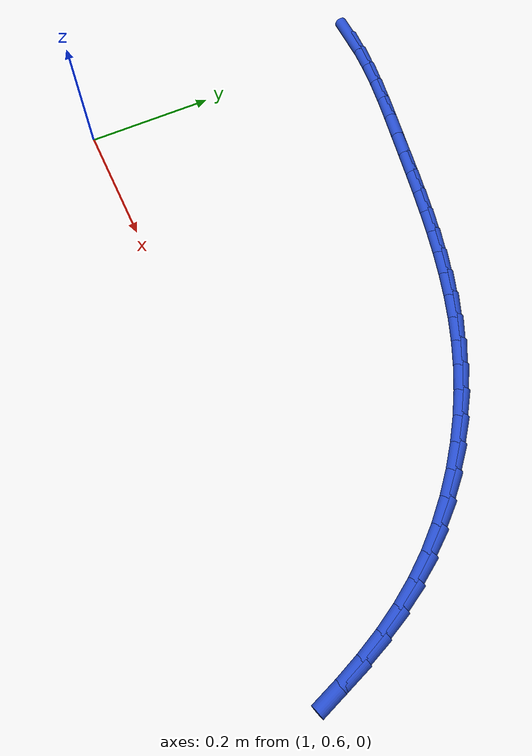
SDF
<sdf version="1.6">
 <world name="default">
  <model name="ground_plane">
   <static>1</static>
   <link name="link">
    <collision name="collision">
     <geometry><plane><normal>0 0 1</normal><size>100 100</size></plane></geometry>
     <surface><friction><ode><mu>100</mu><mu2>50</mu2></ode></friction></surface>
    </collision>
    <visual name="visual">
     <cast_shadows>0</cast_shadows>
     <geometry><plane><normal>0 0 1</normal><size>100 100</size></plane></geometry>
     <material>
      <script><uri>file://media/materials/scripts/gazebo.material</uri><name>Gazebo/WhiteGlow</name></script>
     </material>
    </visual>
   </link>
  </model>
  <model name="line">
   <link name="link_42">
    <pose>0.9817953821972434 1.0853295644105112 0.01 0 1.57 -0.028064290250514535</pose>
    <collision name="collision">
     <geometry><cylinder><radius>0.01</radius><length>0.08</length></cylinder></geometry>
    </collision>
    <visual name="visual">
     <material>
      <script><name>Gazebo/Blue</name><uri>file://media/materials/scripts/gazebo.material</uri></script>
     </material>
     <geometry><cylinder><radius>0.01</radius><length>0.08</length></cylinder></geometry>
    </visual>
   </link>
   <link name="link_43">
    <pose>1.019267383030441 1.084277663127671 0.01 0 1.57 -0.09340894597363829</pose>
    <collision name="collision">
     <geometry><cylinder><radius>0.01</radius><length>0.08</length></cylinder></geometry>
    </collision>
    <visual name="visual">
     <material>
      <script><name>Gazebo/Blue</name><uri>file://media/materials/scripts/gazebo.material</uri></script>
     </material>
     <geometry><cylinder><radius>0.01</radius><length>0.08</length></cylinder></geometry>
    </visual>
   </link>
   <link name="link_44">
    <pose>1.0574258064903836 1.0807029221457571 0.01 0 1.57 -0.14314682011853433</pose>
    <collision name="collision">
     <geometry><cylinder><radius>0.01</radius><length>0.08</length></cylinder></geometry>
    </collision>
    <visual name="visual">
     <material>
      <script><name>Gazebo/Blue</name><uri>file://media/materials/scripts/gazebo.material</uri></script>
     </material>
     <geometry><cylinder><radius>0.01</radius><length>0.08</length></cylinder></geometry>
    </visual>
   </link>
   <link name="link_45">
    <pose>1.0960547964541636 1.0751352237575615 0.01 0 1.57 -0.17888267754836734</pose>
    <collision name="collision">
     <geometry><cylinder><radius>0.01</radius><length>0.08</length></cylinder></geometry>
    </collision>
    <visual name="visual">
     <material>
      <script><name>Gazebo/Blue</name><uri>file://media/materials/scripts/gazebo.material</uri></script>
     </material>
     <geometry><cylinder><radius>0.01</radius><length>0.08</length></cylinder></geometry>
    </visual>
   </link>
   <link name="link_46">
    <pose>1.1349384967988727 1.0681044502558752 0.01 0 1.57 -0.20182484992709407</pose>
    <collision name="collision">
     <geometry><cylinder><radius>0.01</radius><length>0.08</length></cylinder></geometry>
    </collision>
    <visual name="visual">
     <material>
      <script><name>Gazebo/Blue</name><uri>file://media/materials/scripts/gazebo.material</uri></script>
     </material>
     <geometry><cylinder><radius>0.01</radius><length>0.08</length></cylinder></geometry>
    </visual>
   </link>
   <link name="link_47">
    <pose>1.1738610514016017 1.0601404839334896 0.01 0 1.57 -0.21268831791208223</pose>
    <collision name="collision">
     <geometry><cylinder><radius>0.01</radius><length>0.08</length></cylinder></geometry>
    </collision>
    <visual name="visual">
     <material>
      <script><name>Gazebo/Blue</name><uri>file://media/materials/scripts/gazebo.material</uri></script>
     </material>
     <geometry><cylinder><radius>0.01</radius><length>0.08</length></cylinder></geometry>
    </visual>
   </link>
   <link name="link_48">
    <pose>1.2126066041394439 1.0517732070831967 0.01 0 1.57 -0.21323765566338074</pose>
    <collision name="collision">
     <geometry><cylinder><radius>0.01</radius><length>0.08</length></cylinder></geometry>
    </collision>
    <visual name="visual">
     <material>
      <script><name>Gazebo/Blue</name><uri>file://media/materials/scripts/gazebo.material</uri></script>
     </material>
     <geometry><cylinder><radius>0.01</radius><length>0.08</length></cylinder></geometry>
    </visual>
   </link>
   <link name="link_49">
    <pose>1.2509776631504053 1.0434647395188101 0.01 0 1.57 -0.21430568211302622</pose>
    <collision name="collision">
     <geometry><cylinder><radius>0.01</radius><length>0.08</length></cylinder></geometry>
    </collision>
    <visual name="visual">
     <material>
      <script><name>Gazebo/Blue</name><uri>file://media/materials/scripts/gazebo.material</uri></script>
     </material>
     <geometry><cylinder><radius>0.01</radius><length>0.08</length></cylinder></geometry>
    </visual>
   </link>
   <link name="link_50">
    <pose>1.2889032679867423 1.0352103114614886 0.01 0 1.57 -0.22062290532530543</pose>
    <collision name="collision">
     <geometry><cylinder><radius>0.01</radius><length>0.08</length></cylinder></geometry>
    </collision>
    <visual name="visual">
     <material>
      <script><name>Gazebo/Blue</name><uri>file://media/materials/scripts/gazebo.material</uri></script>
     </material>
     <geometry><cylinder><radius>0.01</radius><length>0.08</length></cylinder></geometry>
    </visual>
   </link>
   <link name="link_51">
    <pose>1.3263657627437275 1.0268084641399922 0.01 0 1.57 -0.23236589635160992</pose>
    <collision name="collision">
     <geometry><cylinder><radius>0.01</radius><length>0.08</length></cylinder></geometry>
    </collision>
    <visual name="visual">
     <material>
      <script><name>Gazebo/Blue</name><uri>file://media/materials/scripts/gazebo.material</uri></script>
     </material>
     <geometry><cylinder><radius>0.01</radius><length>0.08</length></cylinder></geometry>
    </visual>
   </link>
   <link name="link_52">
    <pose>1.363347677998478 1.0180570506817679 0.01 0 1.57 -0.24967230393669435</pose>
    <collision name="collision">
     <geometry><cylinder><radius>0.01</radius><length>0.08</length></cylinder></geometry>
    </collision>
    <visual name="visual">
     <material>
      <script><name>Gazebo/Blue</name><uri>file://media/materials/scripts/gazebo.material</uri></script>
     </material>
     <geometry><cylinder><radius>0.01</radius><length>0.08</length></cylinder></geometry>
    </visual>
   </link>
   <link name="link_53">
    <pose>1.399831544328109 1.0087539242142645 0.01 0 1.57 -0.27264383680383425</pose>
    <collision name="collision">
     <geometry><cylinder><radius>0.01</radius><length>0.08</length></cylinder></geometry>
    </collision>
    <visual name="visual">
     <material>
      <script><name>Gazebo/Blue</name><uri>file://media/materials/scripts/gazebo.material</uri></script>
     </material>
     <geometry><cylinder><radius>0.01</radius><length>0.08</length></cylinder></geometry>
    </visual>
   </link>
   <link name="link_54">
    <pose>1.4357998923097375 0.9986969378649291 0.01 0 1.57 -0.30132721122784484</pose>
    <collision name="collision">
     <geometry><cylinder><radius>0.01</radius><length>0.08</length></cylinder></geometry>
    </collision>
    <visual name="visual">
     <material>
      <script><name>Gazebo/Blue</name><uri>file://media/materials/scripts/gazebo.material</uri></script>
     </material>
     <geometry><cylinder><radius>0.01</radius><length>0.08</length></cylinder></geometry>
    </visual>
   </link>
   <link name="link_55">
    <pose>1.4712352525204806 0.98768394476121 0.01 0 1.57 -0.3356895209946991</pose>
    <collision name="collision">
     <geometry><cylinder><radius>0.01</radius><length>0.08</length></cylinder></geometry>
    </collision>
    <visual name="visual">
     <material>
      <script><name>Gazebo/Blue</name><uri>file://media/materials/scripts/gazebo.material</uri></script>
     </material>
     <geometry><cylinder><radius>0.01</radius><length>0.08</length></cylinder></geometry>
    </visual>
   </link>
   <link name="link_56">
    <pose>1.5061201555374533 0.9755127980305555 0.01 0 1.57 -0.37558959024129496</pose>
    <collision name="collision">
     <geometry><cylinder><radius>0.01</radius><length>0.08</length></cylinder></geometry>
    </collision>
    <visual name="visual">
     <material>
      <script><name>Gazebo/Blue</name><uri>file://media/materials/scripts/gazebo.material</uri></script>
     </material>
     <geometry><cylinder><radius>0.01</radius><length>0.08</length></cylinder></geometry>
    </visual>
   </link>
   <link name="link_57">
    <pose>1.5404371319377734 0.9619813508004131 0.01 0 1.57 -0.4207485864366747</pose>
    <collision name="collision">
     <geometry><cylinder><radius>0.01</radius><length>0.08</length></cylinder></geometry>
    </collision>
    <visual name="visual">
     <material>
      <script><name>Gazebo/Blue</name><uri>file://media/materials/scripts/gazebo.material</uri></script>
     </material>
     <geometry><cylinder><radius>0.01</radius><length>0.08</length></cylinder></geometry>
    </visual>
   </link>
   <link name="link_58">
    <pose>1.5741687122985564 0.9468874561982309 0.01 0 1.57 -0.4707251097073771</pose>
    <collision name="collision">
     <geometry><cylinder><radius>0.01</radius><length>0.08</length></cylinder></geometry>
    </collision>
    <visual name="visual">
     <material>
      <script><name>Gazebo/Blue</name><uri>file://media/materials/scripts/gazebo.material</uri></script>
     </material>
     <geometry><cylinder><radius>0.01</radius><length>0.08</length></cylinder></geometry>
    </visual>
   </link>
   <link name="link_59">
    <pose>1.6072974271969185 0.9300289673514566 0.01 0 1.57 -0.5246531406020764</pose>
    <collision name="collision">
     <geometry><cylinder><radius>0.01</radius><length>0.08</length></cylinder></geometry>
    </collision>
    <visual name="visual">
     <material>
      <script><name>Gazebo/Blue</name><uri>file://media/materials/scripts/gazebo.material</uri></script>
     </material>
     <geometry><cylinder><radius>0.01</radius><length>0.08</length></cylinder></geometry>
    </visual>
   </link>
   <link name="link_60">
    <pose>1.6397892204547773 0.911224116315038 0.01 0 1.57 -0.5800681598573565</pose>
    <collision name="collision">
     <geometry><cylinder><radius>0.01</radius><length>0.08</length></cylinder></geometry>
    </collision>
    <visual name="visual">
     <material>
      <script><name>Gazebo/Blue</name><uri>file://media/materials/scripts/gazebo.material</uri></script>
     </material>
     <geometry><cylinder><radius>0.01</radius><length>0.08</length></cylinder></geometry>
    </visual>
   </link>
   <link name="link_61">
    <pose>1.6714672168022822 0.890466606469191 0.01 0 1.57 -0.6364839782524052</pose>
    <collision name="collision">
     <geometry><cylinder><radius>0.01</radius><length>0.08</length></cylinder></geometry>
    </collision>
    <visual name="visual">
     <material>
      <script><name>Gazebo/Blue</name><uri>file://media/materials/scripts/gazebo.material</uri></script>
     </material>
     <geometry><cylinder><radius>0.01</radius><length>0.08</length></cylinder></geometry>
    </visual>
   </link>
   <link name="link_62">
    <pose>1.7020816550074782 0.8678396908209035 0.01 0 1.57 -0.6946423712176923</pose>
    <collision name="collision">
     <geometry><cylinder><radius>0.01</radius><length>0.08</length></cylinder></geometry>
    </collision>
    <visual name="visual">
     <material>
      <script><name>Gazebo/Blue</name><uri>file://media/materials/scripts/gazebo.material</uri></script>
     </material>
     <geometry><cylinder><radius>0.01</radius><length>0.08</length></cylinder></geometry>
    </visual>
   </link>
   <link name="link_63">
    <pose>1.7313821906249578 0.843427338928685 0.01 0 1.57 -0.7552779015953359</pose>
    <collision name="collision">
     <geometry><cylinder><radius>0.01</radius><length>0.08</length></cylinder></geometry>
    </collision>
    <visual name="visual">
     <material>
      <script><name>Gazebo/Blue</name><uri>file://media/materials/scripts/gazebo.material</uri></script>
     </material>
     <geometry><cylinder><radius>0.01</radius><length>0.08</length></cylinder></geometry>
    </visual>
   </link>
   <link name="link_64">
    <pose>1.7591184792093133 0.817313520351046 0.01 0 1.57 -0.8191135648344122</pose>
    <collision name="collision">
     <geometry><cylinder><radius>0.01</radius><length>0.08</length></cylinder></geometry>
    </collision>
    <visual name="visual">
     <material>
      <script><name>Gazebo/Blue</name><uri>file://media/materials/scripts/gazebo.material</uri></script>
     </material>
     <geometry><cylinder><radius>0.01</radius><length>0.08</length></cylinder></geometry>
    </visual>
   </link>
   <link name="link_65">
    <pose>1.7850401763151373 0.7895822046464955 0.01 0 1.57 -0.8868543155305477</pose>
    <collision name="collision">
     <geometry><cylinder><radius>0.01</radius><length>0.08</length></cylinder></geometry>
    </collision>
    <visual name="visual">
     <material>
      <script><name>Gazebo/Blue</name><uri>file://media/materials/scripts/gazebo.material</uri></script>
     </material>
     <geometry><cylinder><radius>0.01</radius><length>0.08</length></cylinder></geometry>
    </visual>
   </link>
   <link name="link_66">
    <pose>1.8088969374970223 0.760317361373543 0.01 0 1.57 -0.9591663048548573</pose>
    <collision name="collision">
     <geometry><cylinder><radius>0.01</radius><length>0.08</length></cylinder></geometry>
    </collision>
    <visual name="visual">
     <material>
      <script><name>Gazebo/Blue</name><uri>file://media/materials/scripts/gazebo.material</uri></script>
     </material>
     <geometry><cylinder><radius>0.01</radius><length>0.08</length></cylinder></geometry>
    </visual>
   </link>
   <link name="link_67">
    <pose>1.8304384183095606 0.7296029600906987 0.01 0 1.57 -1.0351141875100496</pose>
    <collision name="collision">
     <geometry><cylinder><radius>0.01</radius><length>0.08</length></cylinder></geometry>
    </collision>
    <visual name="visual">
     <material>
      <script><name>Gazebo/Blue</name><uri>file://media/materials/scripts/gazebo.material</uri></script>
     </material>
     <geometry><cylinder><radius>0.01</radius><length>0.08</length></cylinder></geometry>
    </visual>
   </link>
   <link name="link_68">
    <pose>1.8494744448374298 0.6975328533249511 0.01 0 1.57 -1.1051622629365583</pose>
    <collision name="collision">
     <geometry><cylinder><radius>0.01</radius><length>0.08</length></cylinder></geometry>
    </collision>
    <visual name="visual">
     <material>
      <script><name>Gazebo/Blue</name><uri>file://media/materials/scripts/gazebo.material</uri></script>
     </material>
     <geometry><cylinder><radius>0.01</radius><length>0.08</length></cylinder></geometry>
    </visual>
   </link>
   <link name="link_69">
    <pose>1.8661921337472265 0.6642628633237356 0.01 0 1.57 -1.1650024083906256</pose>
    <collision name="collision">
     <geometry><cylinder><radius>0.01</radius><length>0.08</length></cylinder></geometry>
    </collision>
    <visual name="visual">
     <material>
      <script><name>Gazebo/Blue</name><uri>file://media/materials/scripts/gazebo.material</uri></script>
     </material>
     <geometry><cylinder><radius>0.01</radius><length>0.08</length></cylinder></geometry>
    </visual>
   </link>
   <link name="link_70">
    <pose>1.8809245145677767 0.6299727784224732 0.01 0 1.57 -1.2143600782573964</pose>
    <collision name="collision">
     <geometry><cylinder><radius>0.01</radius><length>0.08</length></cylinder></geometry>
    </collision>
    <visual name="visual">
     <material>
      <script><name>Gazebo/Blue</name><uri>file://media/materials/scripts/gazebo.material</uri></script>
     </material>
     <geometry><cylinder><radius>0.01</radius><length>0.08</length></cylinder></geometry>
    </visual>
   </link>
   <link name="link_71">
    <pose>1.894004932049578 0.5948424387315279 0.01 0 1.57 -1.25328767139861</pose>
    <collision name="collision">
     <geometry><cylinder><radius>0.01</radius><length>0.08</length></cylinder></geometry>
    </collision>
    <visual name="visual">
     <material>
      <script><name>Gazebo/Blue</name><uri>file://media/materials/scripts/gazebo.material</uri></script>
     </material>
     <geometry><cylinder><radius>0.01</radius><length>0.08</length></cylinder></geometry>
    </visual>
   </link>
  </model>
 </world>
</sdf>
